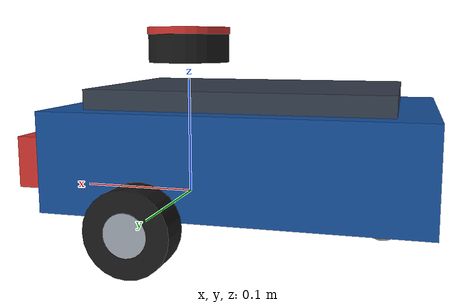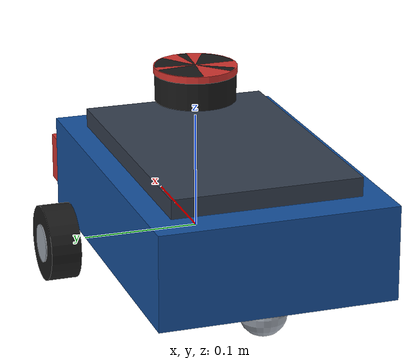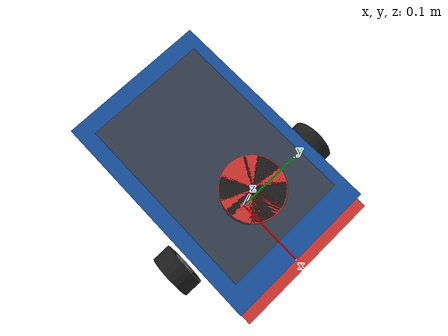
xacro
<?xml version="1.0"?>
<robot name="ids_robot" xmlns:xacro="http://www.ros.org/wiki/xacro">

  <!-- ======== geometry: the single source of truth ======== -->
  <xacro:property name="wheel_radius"   value="0.0325"/>
  <xacro:property name="wheel_width"    value="0.026"/>
  <xacro:property name="wheel_sep"      value="0.250"/>
  <xacro:property name="wheel_mass"     value="0.10"/>

  <xacro:property name="chassis_x"      value="0.30"/>
  <xacro:property name="chassis_y"      value="0.20"/>
  <xacro:property name="chassis_z"      value="0.08"/>
  <xacro:property name="chassis_mass"   value="1.5"/>
  <!-- chassis centre is behind the axle, towards the caster -->
  <xacro:property name="chassis_cx"     value="-0.06"/>

  <xacro:property name="caster_radius"  value="0.020"/>
  <xacro:property name="caster_x"       value="-0.17"/>
  <!-- caster bottom exactly at ground level (ground is z = -wheel_radius) -->
  <xacro:property name="caster_z"       value="${-wheel_radius + caster_radius}"/>

  <!-- lidar scan plane sits above every other visual (gpu_lidar sees visuals) -->
  <xacro:property name="lidar_z"        value="${chassis_z + 0.05}"/>

  <!-- ======== materials ======== -->
  <material name="chassis_blue"><color rgba="0.08 0.31 0.61 1"/></material>
  <material name="deck_slate"><color rgba="0.20 0.24 0.30 1"/></material>
  <material name="wheel_black"><color rgba="0.10 0.10 0.10 1"/></material>
  <material name="hub_grey"><color rgba="0.62 0.65 0.69 1"/></material>
  <material name="accent_red"><color rgba="0.82 0.20 0.18 1"/></material>

  <!-- ======== inertia helpers ======== -->
  <xacro:macro name="box_inertia" params="m x y z ox:=0 oy:=0 oz:=0">
    <inertial>
      <origin xyz="${ox} ${oy} ${oz}" rpy="0 0 0"/>
      <mass value="${m}"/>
      <inertia ixx="${m*(y*y+z*z)/12.0}" iyy="${m*(x*x+z*z)/12.0}"
               izz="${m*(x*x+y*y)/12.0}" ixy="0" ixz="0" iyz="0"/>
    </inertial>
  </xacro:macro>

  <!-- wheel spins about the joint's y axis; cylinder inertia expressed in that frame -->
  <xacro:macro name="wheel_inertia" params="m r h">
    <inertial>
      <mass value="${m}"/>
      <inertia ixx="${m*(3*r*r+h*h)/12.0}" iyy="${m*r*r/2.0}"
               izz="${m*(3*r*r+h*h)/12.0}" ixy="0" ixz="0" iyz="0"/>
    </inertial>
  </xacro:macro>

  <!-- ======== chassis (root, at the wheel axle) ======== -->
  <link name="base_link">
    <visual name="chassis">
      <origin xyz="${chassis_cx} 0 ${chassis_z/2.0}" rpy="0 0 0"/>
      <geometry><box size="${chassis_x} ${chassis_y} ${chassis_z}"/></geometry>
      <material name="chassis_blue"/>
    </visual>
    <visual name="deck">
      <origin xyz="${chassis_cx} 0 ${chassis_z + 0.008}" rpy="0 0 0"/>
      <geometry><box size="${chassis_x - 0.06} ${chassis_y - 0.04} 0.016"/></geometry>
      <material name="deck_slate"/>
    </visual>
    <visual name="front_bumper">
      <origin xyz="${chassis_cx + chassis_x/2.0 + 0.008} 0 ${chassis_z/2.0}" rpy="0 0 0"/>
      <geometry><box size="0.016 ${chassis_y} 0.04"/></geometry>
      <material name="accent_red"/>
    </visual>
    <collision>
      <origin xyz="${chassis_cx} 0 ${chassis_z/2.0}" rpy="0 0 0"/>
      <geometry><box size="${chassis_x} ${chassis_y} ${chassis_z}"/></geometry>
    </collision>
    <xacro:box_inertia m="${chassis_mass}" x="${chassis_x}" y="${chassis_y}" z="${chassis_z}"
                       ox="${chassis_cx}" oz="${chassis_z/2.0}"/>
  </link>

  <!-- ======== drive wheels ======== -->
  <xacro:macro name="wheel" params="prefix reflect">
    <link name="${prefix}_wheel">
      <visual name="tyre">
        <origin xyz="0 0 0" rpy="${pi/2} 0 0"/>
        <geometry><cylinder radius="${wheel_radius}" length="${wheel_width}"/></geometry>
        <material name="wheel_black"/>
      </visual>
      <visual name="hub">
        <origin xyz="0 0 0" rpy="${pi/2} 0 0"/>
        <geometry><cylinder radius="${wheel_radius*0.5}" length="${wheel_width*1.08}"/></geometry>
        <material name="hub_grey"/>
      </visual>
      <!-- sphere collision: single contact point under the hub -->
      <collision>
        <geometry><sphere radius="${wheel_radius}"/></geometry>
      </collision>
      <xacro:wheel_inertia m="${wheel_mass}" r="${wheel_radius}" h="${wheel_width}"/>
    </link>
    <joint name="${prefix}_wheel_joint" type="continuous">
      <parent link="base_link"/>
      <child link="${prefix}_wheel"/>
      <origin xyz="0 ${reflect*wheel_sep/2.0} 0" rpy="0 0 0"/>
      <axis xyz="0 1 0"/>
    </joint>
    <gazebo reference="${prefix}_wheel">
      <mu1>1.0</mu1>
      <mu2>1.0</mu2>
    </gazebo>
  </xacro:macro>

  <xacro:wheel prefix="left"  reflect="1"/>
  <xacro:wheel prefix="right" reflect="-1"/>

  <!-- ======== rear caster (near-frictionless sphere) ======== -->
  <link name="caster">
    <visual>
      <geometry><sphere radius="${caster_radius}"/></geometry>
      <material name="hub_grey"/>
    </visual>
    <collision>
      <geometry><sphere radius="${caster_radius}"/></geometry>
    </collision>
    <inertial>
      <mass value="0.02"/>
      <inertia ixx="3.2e-6" iyy="3.2e-6" izz="3.2e-6" ixy="0" ixz="0" iyz="0"/>
    </inertial>
  </link>
  <joint name="caster_joint" type="fixed">
    <parent link="base_link"/>
    <child link="caster"/>
    <origin xyz="${caster_x} 0 ${caster_z}" rpy="0 0 0"/>
  </joint>
  <gazebo reference="caster">
    <mu1>0.001</mu1>
    <mu2>0.001</mu2>
  </gazebo>

  <!-- ======== lidar ======== -->
  <link name="lidar_link">
    <visual name="drum">
      <geometry><cylinder radius="0.035" length="0.03"/></geometry>
      <material name="wheel_black"/>
    </visual>
    <visual name="scan_ring">
      <origin xyz="0 0 0.012" rpy="0 0 0"/>
      <geometry><cylinder radius="0.036" length="0.006"/></geometry>
      <material name="accent_red"/>
    </visual>
    <collision>
      <geometry><cylinder radius="0.035" length="0.03"/></geometry>
    </collision>
    <inertial>
      <mass value="0.10"/>
      <inertia ixx="3.8e-5" iyy="3.8e-5" izz="6.1e-5" ixy="0" ixz="0" iyz="0"/>
    </inertial>
  </link>
  <joint name="lidar_joint" type="fixed">
    <parent link="base_link"/>
    <child link="lidar_link"/>
    <origin xyz="0 0 ${lidar_z}" rpy="0 0 0"/>
  </joint>

  <gazebo reference="lidar_link">
    <sensor name="lidar" type="gpu_lidar">
      <update_rate>10</update_rate>
      <topic>/scan</topic>
      <gz_frame_id>lidar_link</gz_frame_id>
      <lidar>
        <scan><horizontal>
          <samples>360</samples><resolution>1</resolution>
          <min_angle>-3.14159</min_angle><max_angle>3.14159</max_angle>
        </horizontal></scan>
        <range><min>0.15</min><max>12.0</max><resolution>0.01</resolution></range>
      </lidar>
      <always_on>1</always_on>
      <visualize>false</visualize>
    </sensor>
  </gazebo>

  <!-- ======== Gazebo systems ======== -->
  <gazebo>
    <!-- wheel odometry: what the real robot will have, and what the IDS uses -->
    <plugin filename="gz-sim-diff-drive-system" name="gz::sim::systems::DiffDrive">
      <left_joint>left_wheel_joint</left_joint>
      <right_joint>right_wheel_joint</right_joint>
      <wheel_separation>${wheel_sep}</wheel_separation>
      <wheel_radius>${wheel_radius}</wheel_radius>
      <odom_publish_frequency>50</odom_publish_frequency>
      <topic>/cmd_vel</topic>
      <odom_topic>/odom</odom_topic>
      <!-- TF left on a private gz topic; sim_frames publishes odom->base_link -->
      <tf_topic>/model/ids_robot/tf_wheel_odom</tf_topic>
      <frame_id>odom</frame_id>
      <child_frame_id>base_link</child_frame_id>
      <max_linear_acceleration>1.0</max_linear_acceleration>
      <min_linear_acceleration>-1.0</min_linear_acceleration>
      <max_angular_acceleration>3.0</max_angular_acceleration>
      <min_angular_acceleration>-3.0</min_angular_acceleration>
    </plugin>

    <plugin filename="gz-sim-joint-state-publisher-system"
            name="gz::sim::systems::JointStatePublisher">
      <topic>/joint_states</topic>
    </plugin>

    <!-- ground truth: exact pose of base_link in the world -->
    <plugin filename="gz-sim-odometry-publisher-system"
            name="gz::sim::systems::OdometryPublisher">
      <odom_frame>world</odom_frame>
      <robot_base_frame>base_link</robot_base_frame>
      <odom_topic>/ground_truth</odom_topic>
      <tf_topic>/model/ids_robot/tf_ground_truth</tf_topic>
      <odom_publish_frequency>50</odom_publish_frequency>
      <dimensions>2</dimensions>
    </plugin>
  </gazebo>

</robot>
